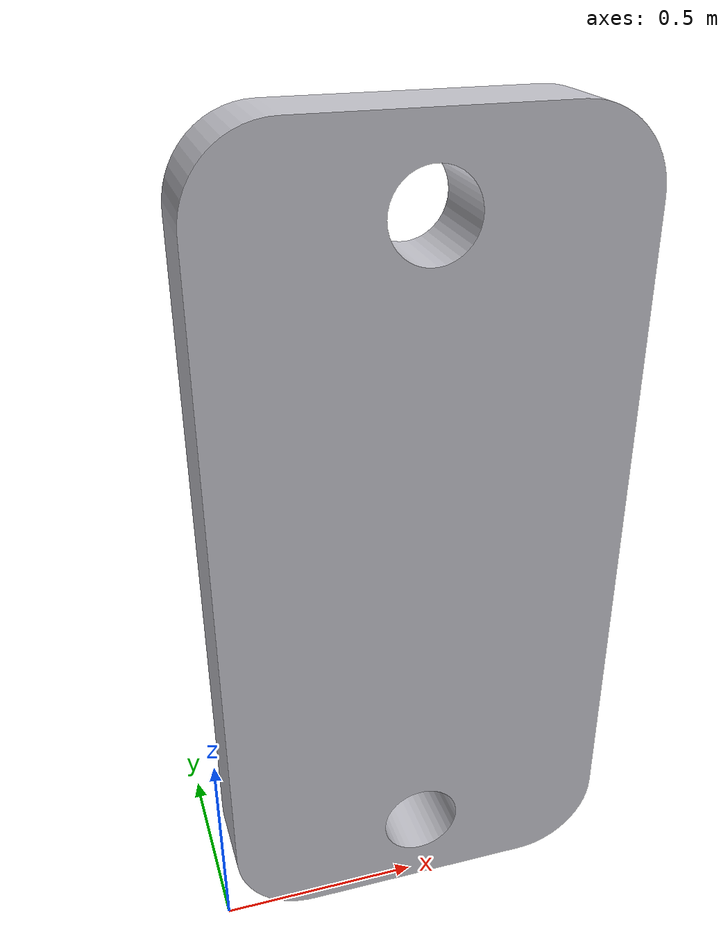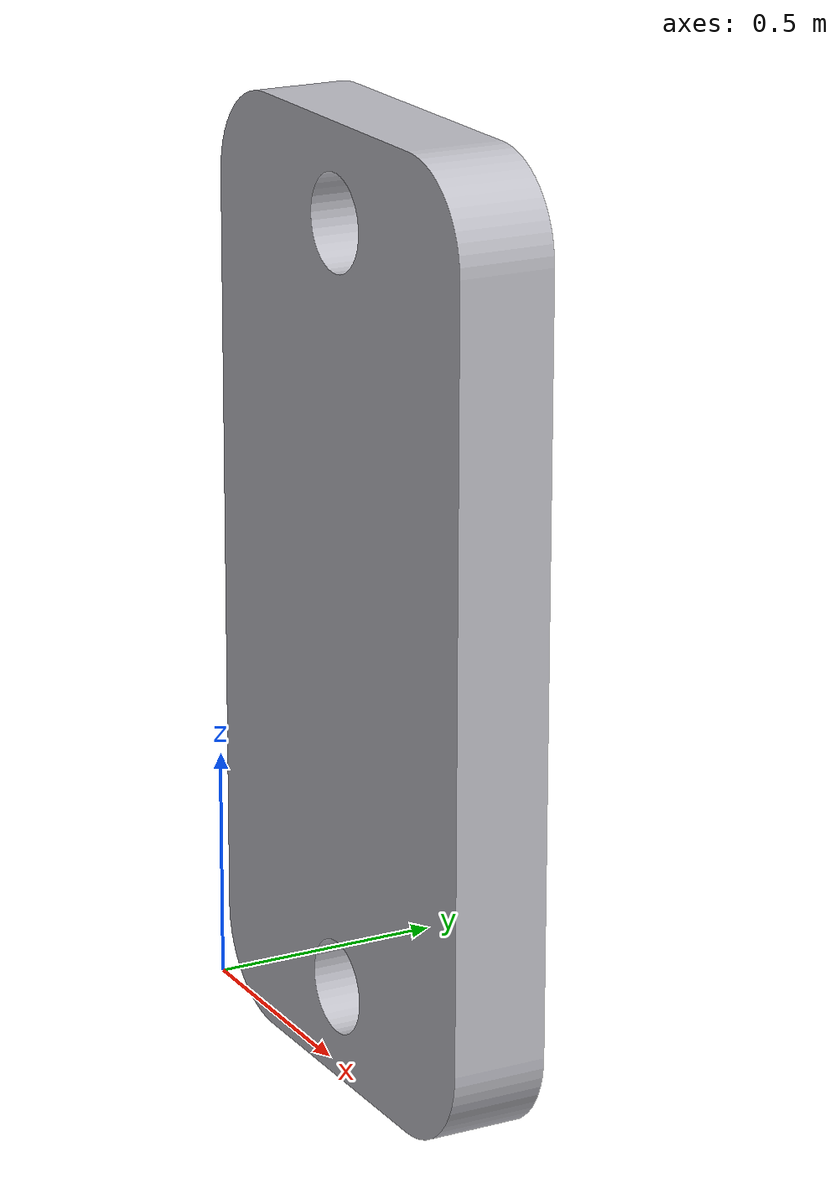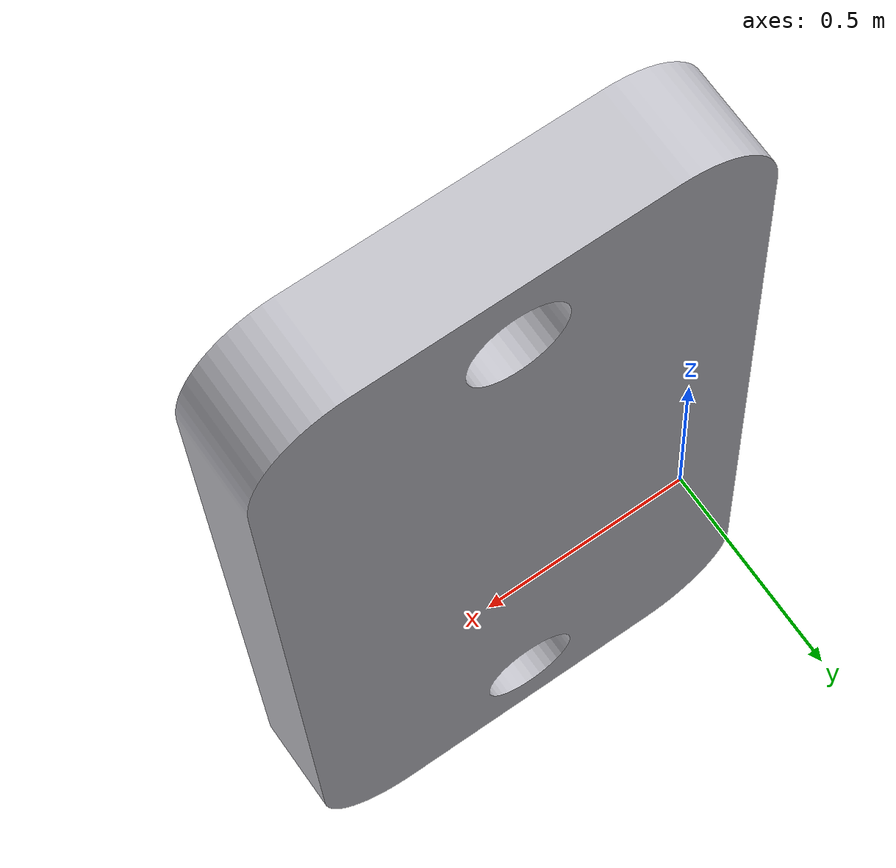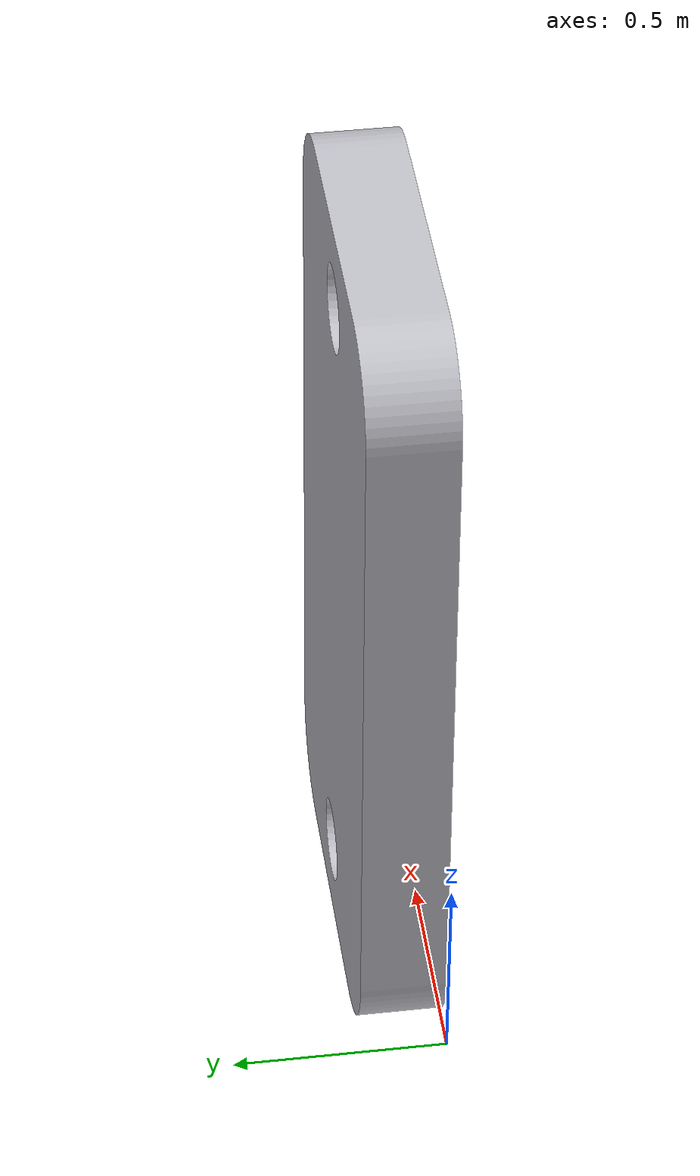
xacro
<?xml version="1.0" ?>
<robot name="TEST_LINK_sizeup" xmlns:xacro="http://www.ros.org/wiki/xacro">

<xacro:include filename="../urdf/materials.xacro" />
<xacro:include filename="../urdf/TEST_LINK_sizeup.trans" />
<xacro:include filename="../urdf/TEST_LINK_sizeup.gazebo" />
<link name="base_link">
  <inertial>
    <origin xyz="0.5326644002736791 0.1 0.9698855303283307" rpy="0 0 0"/>
    <mass value="2987.446009322719"/>
    <inertia ixx="943.969904" iyy="1184.179671" izz="260.126074" ixy="-0.0" iyz="0.0" ixz="0.0"/>
  </inertial>
  <visual>
    <origin xyz="0 0 0" rpy="0 0 0"/>
    <geometry>
      <!--0.001 means, mm -> m-->
      <mesh filename="../meshes/base_link.stl" scale="0.001 0.001 0.001"/>
    </geometry>
    <material name="silver"/>
  </visual>
  <collision>
    <origin xyz="0 0 0" rpy="0 0 0"/>
    <geometry>
      <mesh filename="../meshes/base_link.stl" scale="0.001 0.001 0.001"/>
    </geometry>
  </collision>
</link>

</robot>

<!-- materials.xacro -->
<robot name="TEST_LINK_sizeup" xmlns:xacro="http://www.ros.org/wiki/xacro" >

<material name="black">
  <color rgba="0.000 0.000 0.000 1.000"/>
</material>

</robot>

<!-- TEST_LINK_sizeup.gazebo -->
<robot name="TEST_LINK_sizeup" xmlns:xacro="http://www.ros.org/wiki/xacro" >

<xacro:property name="body_color" value="Gazebo/Black" />

<gazebo>
  <plugin name="control" filename="libgazebo_ros_control.so"/>
</gazebo>
<gazebo reference="base_link">
  <material>${body_color}</material>
  <mu1>0.2</mu1>
  <mu2>0.2</mu2>
  <selfCollide>true</selfCollide>
  <gravity>true</gravity>
</gazebo>

</robot>
